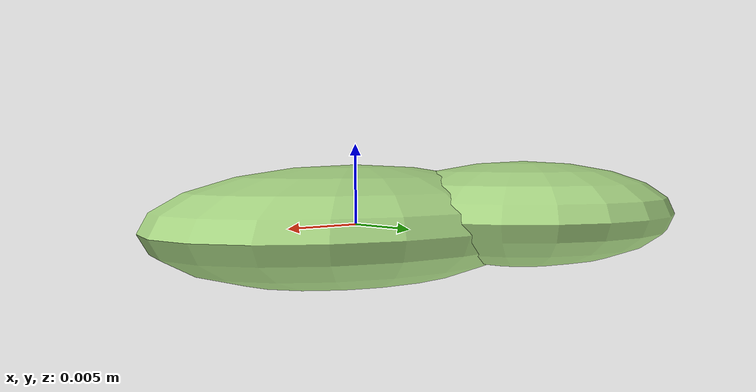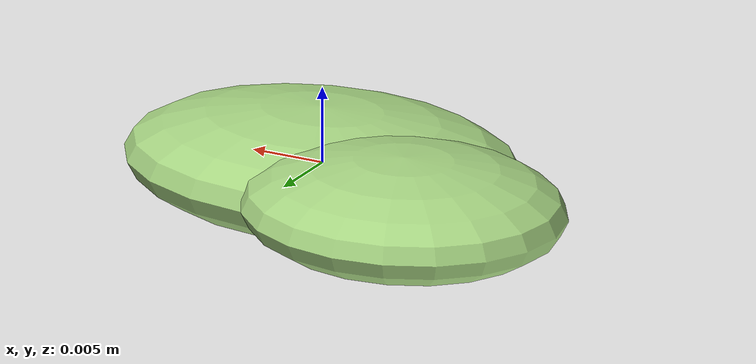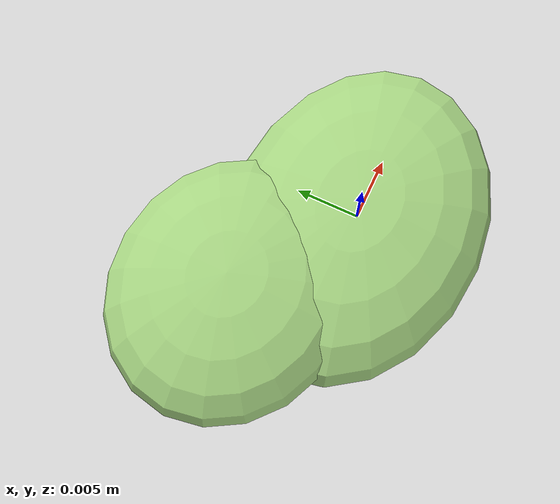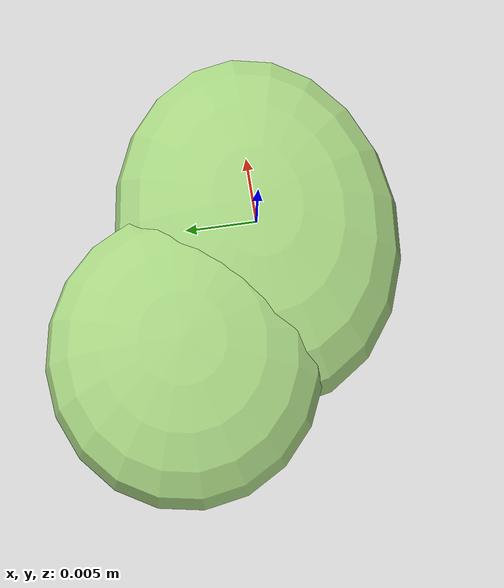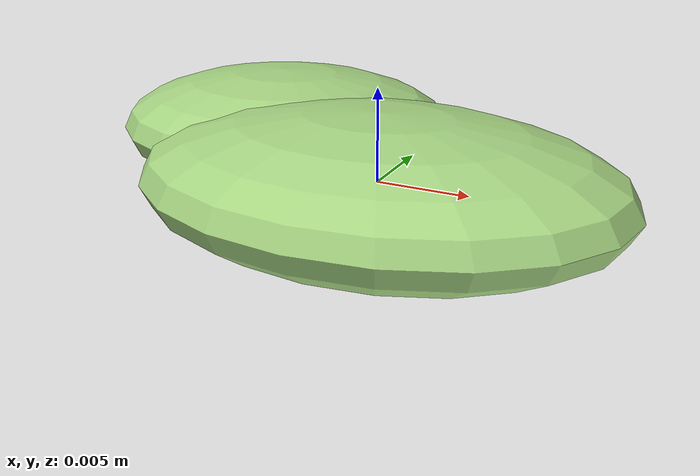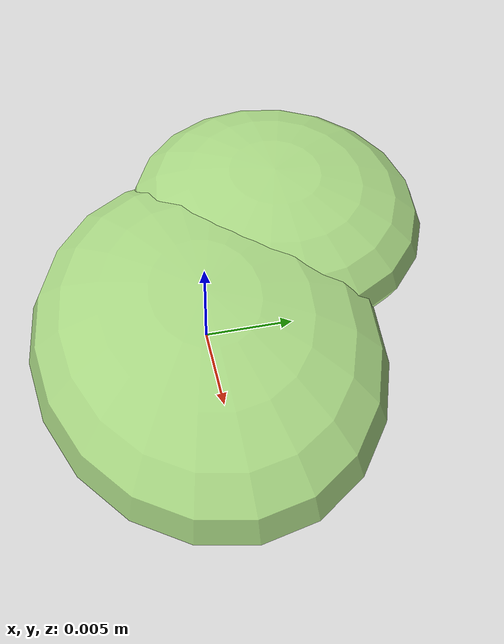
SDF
<?xml version="1.0" ?>
<!-- |    This document was autogenerated by xmacro from data/veggie_template/veggie_base.sdf.xacro  | -->
<!-- |    EDITING THIS FILE BY HAND IS NOT RECOMMENDED                                               | -->
<sdf version="1.8">
	<!-- Parameters -->
	<!-- Base -->
	<!-- Joint 0 -->
	<!-- Link 1 -->
	<!-- Joint 1 -->
	<!-- Link 2 -->
	<!-- Primitives -->
	<!-- All dimensions are half -->
	<!-- Object -->
	<model name="veggie">
		<!-- link0 -->
		<link name="link0">
			<inertial>
				<mass>0.0020608800678867467</mass>
				<inertia>
					<ixx>4.607593217117824e-08</ixx>
					<ixy>0</ixy>
					<ixz>0</ixz>
					<iyy>7.905361032652752e-08</iyy>
					<iyz>0</iyz>
					<izz>1.136703506683105e-07</izz>
				</inertia>
			</inertial>
			<visual name="link0_visual">
				<pose>0 0 0 0 0 0</pose>
				<geometry>
					<ellipsoid>
						<radii>0.013337725029494565 0.00989374458637123 0.003728384035544108</radii>
					</ellipsoid>
				</geometry>
				<material>
					<ambient>0.659 0.839 0.514 1</ambient>
					<diffuse>0.659 0.839 0.514 1</diffuse>
					<specular>0 0 0 0</specular>
					<emissive>0 0 0 1</emissive>
				</material>
			</visual>
			<collision name="link0_collision">
				<pose>0 0 0 0 0 0 </pose>
				<geometry>
					<ellipsoid>
						<radii>0.013337725029494565 0.00989374458637123 0.003728384035544108</radii>
					</ellipsoid>
				</geometry>
			</collision>
		</link>
		<!-- link1 -->
		<joint name="joint0" type="fixed">
			<pose relative_to="link0">-0.008917986932356892 0.006084612819621449 0.0006448932582741534 0.0 0.0 0.0</pose>
			<parent>link0</parent>
			<child>link1</child>
		</joint>
		<link name="link1">
			<pose relative_to="joint0">0 0 0 0 0 0</pose>
			<inertial>
				<mass>0.0012819286647940285</mass>
				<inertia>
					<ixx>2.4031161654664288e-08</ixx>
					<ixy>0</ixy>
					<ixz>0</ixz>
					<iyy>2.9464563878725187e-08</iyy>
					<iyz>0</iyz>
					<izz>4.7926637619369255e-08</izz>
				</inertia>
			</inertial>
			<visual name="link1_visual">
				<pose>0 0 0 0 0 0</pose>
				<geometry>
					<ellipsoid>
						<radii>0.01020107986142984 0.009103281540374998 0.0032955667450843833</radii>
					</ellipsoid>
				</geometry>
				<material>
					<ambient>0.659 0.839 0.514 1</ambient>
					<diffuse>0.659 0.839 0.514 1</diffuse>
					<specular>0 0 0 0</specular>
					<emissive>0 0 0 1</emissive>
				</material>
			</visual>
			<collision name="link1_collision">
				<pose>0 0 0 0 0 0 </pose>
				<geometry>
					<ellipsoid>
						<radii>0.01020107986142984 0.009103281540374998 0.0032955667450843833</radii>
					</ellipsoid>
				</geometry>
			</collision>
		</link>
		<!-- link2 -->
	</model>
</sdf>
